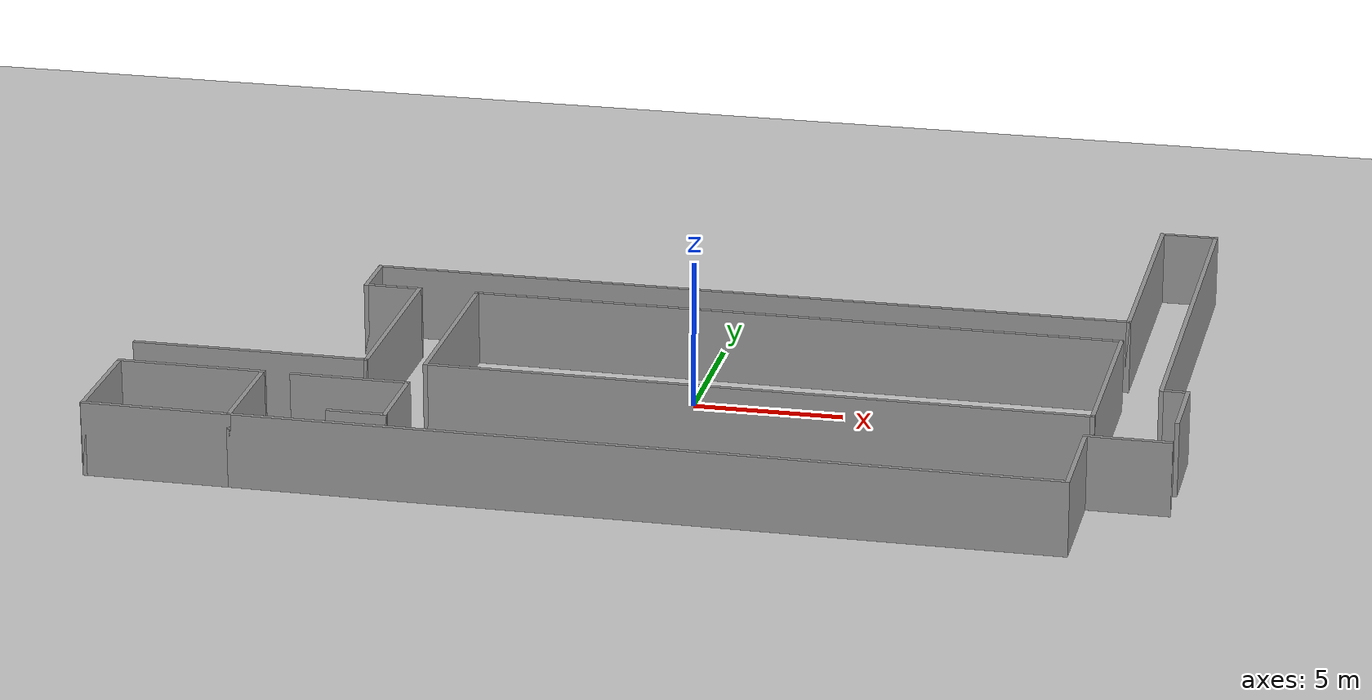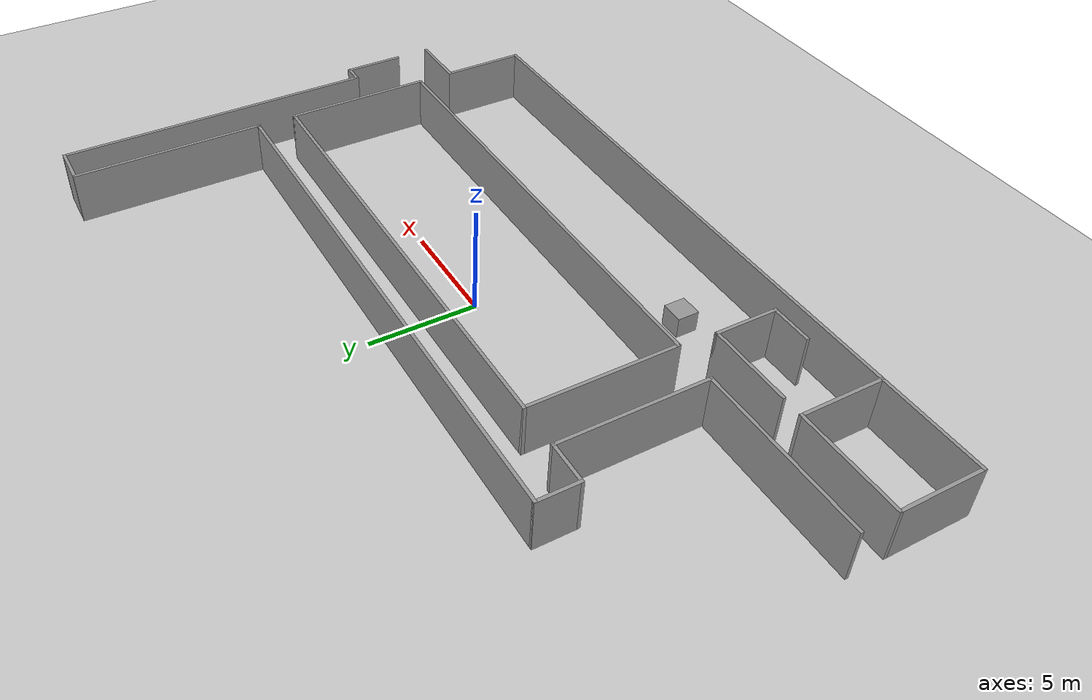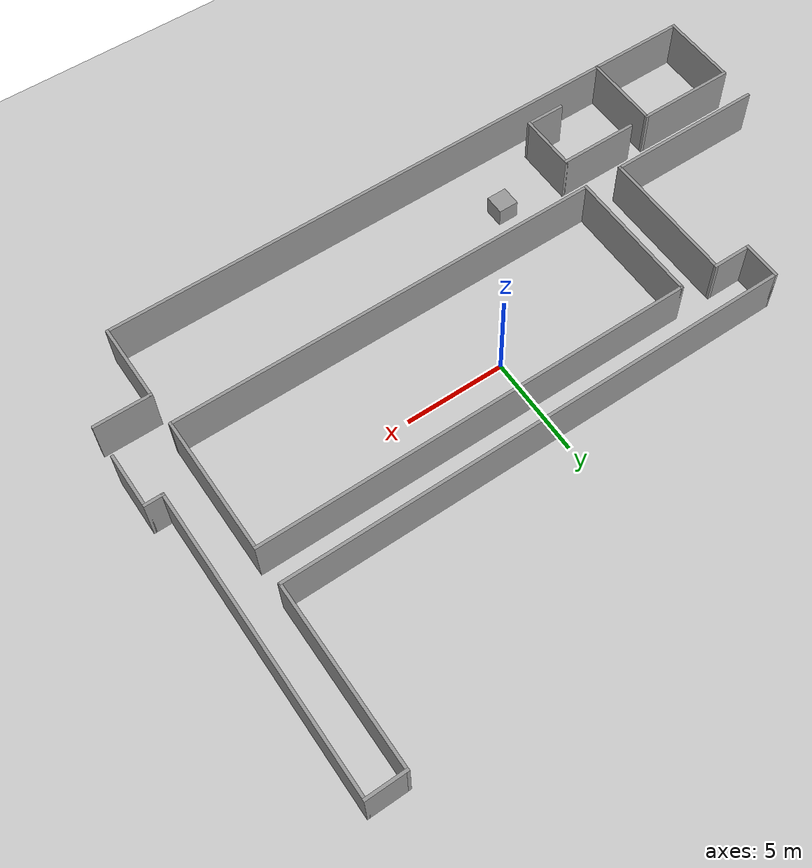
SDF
<sdf version="1.6">
 <world name="default">
  <light name="sun" type="directional">
   <pose>0 0 10 0 -0 0</pose>
   <diffuse>0.8 0.8 0.8 1</diffuse>
   <specular>0.2 0.2 0.2 1</specular>
   <attenuation>
    <range>1000</range>
    <constant>0.9</constant>
    <linear>0.01</linear>
    <quadratic>0.001</quadratic>
   </attenuation>
   <direction>-0.5 0.1 -0.9</direction>
  </light>
  <model name="ground_plane">
   <static>1</static>
   <link name="link">
    <collision name="collision">
     <geometry><plane><normal>0 0 1</normal><size>100 100</size></plane></geometry>
     <surface>
      <contact><collide_bitmask>65535</collide_bitmask></contact>
      <friction><ode><mu>100</mu><mu2>50</mu2></ode></friction>
     </surface>
    </collision>
    <visual name="visual">
     <cast_shadows>0</cast_shadows>
     <geometry><plane><normal>0 0 1</normal><size>100 100</size></plane></geometry>
     <material>
      <script><uri>file://media/materials/scripts/gazebo.material</uri><name>Gazebo/Grey</name></script>
     </material>
    </visual>
   </link>
  </model>
  <gravity>0 0 -9.8</gravity>
  <magnetic_field>6e-06 2.3e-05 -4.2e-05</magnetic_field>
  <atmosphere type="adiabatic"/>
  <physics name="default_physics" default="0" type="ode">
   <max_step_size>0.001</max_step_size>
   <real_time_factor>1</real_time_factor>
   <real_time_update_rate>1000</real_time_update_rate>
  </physics>
  <scene><ambient>0.4 0.4 0.4 1</ambient><background>0.7 0.7 0.7 1</background><shadows>1</shadows></scene>
  <spherical_coordinates>
   <surface_model>EARTH_WGS84</surface_model>
   <latitude_deg>0</latitude_deg>
   <longitude_deg>0</longitude_deg>
   <elevation>0</elevation>
   <heading_deg>0</heading_deg>
  </spherical_coordinates>
  <model name="FinalProj">
   <pose>-0.65 1.561 0 0 -0 0</pose>
   <link name="Wall_101">
    <collision name="Wall_101_Collision">
     <geometry><box><size>22 0.15 2.5</size></box></geometry>
     <pose>0 0 1.25 0 -0 0</pose>
    </collision>
    <visual name="Wall_101_Visual">
     <pose>0 0 1.25 0 -0 0</pose>
     <geometry><box><size>22 0.15 2.5</size></box></geometry>
     <material>
      <script><uri>file://media/materials/scripts/gazebo.material</uri><name>Gazebo/Grey</name></script>
      <ambient>1 1 1 1</ambient>
     </material>
     <meta><layer>0</layer></meta>
    </visual>
    <pose>3.575 0.861 0 0 -0 0</pose>
   </link>
   <link name="Wall_103">
    <collision name="Wall_103_Collision">
     <geometry><box><size>22 0.15 2.5</size></box></geometry>
     <pose>0 0 1.25 0 -0 0</pose>
    </collision>
    <visual name="Wall_103_Visual">
     <pose>0 0 1.25 0 -0 0</pose>
     <geometry><box><size>22 0.15 2.5</size></box></geometry>
     <material>
      <script><uri>file://media/materials/scripts/gazebo.material</uri><name>Gazebo/Grey</name></script>
      <ambient>1 1 1 1</ambient>
     </material>
     <meta><layer>0</layer></meta>
    </visual>
    <pose>3.575 -5.989 0 0 -0 0</pose>
   </link>
   <link name="Wall_105">
    <collision name="Wall_105_Collision">
     <geometry><box><size>7 0.15 2.5</size></box></geometry>
     <pose>0 0 1.25 0 -0 0</pose>
    </collision>
    <visual name="Wall_105_Visual">
     <pose>0 0 1.25 0 -0 0</pose>
     <geometry><box><size>7 0.15 2.5</size></box></geometry>
     <material>
      <script><uri>file://media/materials/scripts/gazebo.material</uri><name>Gazebo/Grey</name></script>
      <ambient>1 1 1 1</ambient>
     </material>
     <meta><layer>0</layer></meta>
    </visual>
    <pose>14.5 -2.564 0 0 0 -1.5708</pose>
   </link>
   <link name="Wall_107">
    <collision name="Wall_107_Collision">
     <geometry><box><size>4.02669 0.15 2.5</size></box></geometry>
     <pose>0 0 1.25 0 -0 0</pose>
    </collision>
    <visual name="Wall_107_Visual">
     <pose>0 0 1.25 0 -0 0</pose>
     <geometry><box><size>4.02669 0.15 2.5</size></box></geometry>
     <material>
      <script><uri>file://media/materials/scripts/gazebo.material</uri><name>Gazebo/Grey</name></script>
      <ambient>1 1 1 1</ambient>
     </material>
     <meta><layer>0</layer></meta>
    </visual>
    <pose>14.5 -9.6225 0 0 -0 1.5708</pose>
   </link>
   <link name="Wall_109">
    <collision name="Wall_109_Collision">
     <geometry><box><size>4 0.15 2.5</size></box></geometry>
     <pose>0 0 1.25 0 -0 0</pose>
    </collision>
    <visual name="Wall_109_Visual">
     <pose>0 0 1.25 0 -0 0</pose>
     <geometry><box><size>4 0.15 2.5</size></box></geometry>
     <material>
      <script><uri>file://media/materials/scripts/gazebo.material</uri><name>Gazebo/Grey</name></script>
      <ambient>1 1 1 1</ambient>
     </material>
     <meta><layer>0</layer></meta>
    </visual>
    <pose>-17.2 -9.636 0 0 0 -1.5708</pose>
   </link>
   <link name="Wall_111">
    <collision name="Wall_111_Collision">
     <geometry><box><size>5 0.15 2.5</size></box></geometry>
     <pose>0 0 1.25 0 -0 0</pose>
    </collision>
    <visual name="Wall_111_Visual">
     <pose>0 0 1.25 0 -0 0</pose>
     <geometry><box><size>5 0.15 2.5</size></box></geometry>
     <material>
      <script><uri>file://media/materials/scripts/gazebo.material</uri><name>Gazebo/Grey</name></script>
      <ambient>1 1 1 1</ambient>
     </material>
     <meta><layer>0</layer></meta>
    </visual>
    <pose>-14.775 -11.561 0 0 -0 0</pose>
   </link>
   <link name="Wall_113">
    <collision name="Wall_113_Collision">
     <geometry><box><size>2.85 0.15 2.5</size></box></geometry>
     <pose>0 0 1.25 0 -0 0</pose>
    </collision>
    <visual name="Wall_113_Visual">
     <pose>0 0 1.25 0 -0 0</pose>
     <geometry><box><size>2.85 0.15 2.5</size></box></geometry>
     <material>
      <script><uri>file://media/materials/scripts/gazebo.material</uri><name>Gazebo/Grey</name></script>
      <ambient>1 1 1 1</ambient>
     </material>
     <meta><layer>0</layer></meta>
    </visual>
    <pose>15.85 -7.684 0 0 -0 0</pose>
   </link>
   <link name="Wall_116">
    <collision name="Wall_116_Collision">
     <geometry><box><size>9 0.15 2.5</size></box></geometry>
     <pose>0 0 1.25 0 -0 0</pose>
    </collision>
    <visual name="Wall_116_Visual">
     <pose>0 0 1.25 0 -0 0</pose>
     <geometry><box><size>9 0.15 2.5</size></box></geometry>
     <material>
      <script><uri>file://media/materials/scripts/gazebo.material</uri><name>Gazebo/Grey</name></script>
      <ambient>1 1 1 1</ambient>
     </material>
     <meta><layer>0</layer></meta>
    </visual>
    <pose>14.5 7.136 0 0 -0 1.5708</pose>
   </link>
   <link name="Wall_119">
    <collision name="Wall_119_Collision">
     <geometry><box><size>2 0.15 2.5</size></box></geometry>
     <pose>0 0 1.25 0 -0 0</pose>
    </collision>
    <visual name="Wall_119_Visual">
     <pose>0 0 1.25 0 -0 0</pose>
     <geometry><box><size>2 0.15 2.5</size></box></geometry>
     <material>
      <script><uri>file://media/materials/scripts/gazebo.material</uri><name>Gazebo/Grey</name></script>
      <ambient>1 1 1 1</ambient>
     </material>
     <meta><layer>0</layer></meta>
    </visual>
    <pose>15.425 11.561 0 0 -0 0</pose>
   </link>
   <link name="Wall_121">
    <collision name="Wall_121_Collision">
     <geometry><box><size>15 0.15 2.5</size></box></geometry>
     <pose>0 0 1.25 0 -0 0</pose>
    </collision>
    <visual name="Wall_121_Visual">
     <pose>0 0 1.25 0 -0 0</pose>
     <geometry><box><size>15 0.15 2.5</size></box></geometry>
     <material>
      <script><uri>file://media/materials/scripts/gazebo.material</uri><name>Gazebo/Grey</name></script>
      <ambient>1 1 1 1</ambient>
     </material>
     <meta><layer>0</layer></meta>
    </visual>
    <pose>16.35 4.136 0 0 0 -1.5708</pose>
   </link>
   <link name="Wall_123">
    <collision name="Wall_123_Collision">
     <geometry><box><size>1 0.15 2.5</size></box></geometry>
     <pose>0 0 1.25 0 -0 0</pose>
    </collision>
    <visual name="Wall_123_Visual">
     <pose>0 0 1.25 0 -0 0</pose>
     <geometry><box><size>1 0.15 2.5</size></box></geometry>
     <material>
      <script><uri>file://media/materials/scripts/gazebo.material</uri><name>Gazebo/Grey</name></script>
      <ambient>1 1 1 1</ambient>
     </material>
     <meta><layer>0</layer></meta>
    </visual>
    <pose>16.775 -3.289 0 0 -0 0</pose>
   </link>
   <link name="Wall_125">
    <collision name="Wall_125_Collision">
     <geometry><box><size>2.85 0.15 2.5</size></box></geometry>
     <pose>0 0 1.25 0 -0 0</pose>
    </collision>
    <visual name="Wall_125_Visual">
     <pose>0 0 1.25 0 -0 0</pose>
     <geometry><box><size>2.85 0.15 2.5</size></box></geometry>
     <material>
      <script><uri>file://media/materials/scripts/gazebo.material</uri><name>Gazebo/Grey</name></script>
      <ambient>1 1 1 1</ambient>
     </material>
     <meta><layer>0</layer></meta>
    </visual>
    <pose>17.2 -4.639 0 0 0 -1.5708</pose>
   </link>
   <link name="Wall_79">
    <collision name="Wall_79_Collision">
     <geometry><box><size>27 0.15 2.5</size></box></geometry>
     <pose>0 0 1.25 0 -0 0</pose>
    </collision>
    <visual name="Wall_79_Visual">
     <pose>0 0 1.25 0 -0 0</pose>
     <geometry><box><size>27 0.15 2.5</size></box></geometry>
     <material>
      <script><uri>file://media/materials/scripts/gazebo.material</uri><name>Gazebo/Grey</name></script>
      <ambient>1 1 1 1</ambient>
     </material>
     <meta><layer>0</layer></meta>
    </visual>
    <pose>1.075 -11.561 0 0 -0 0</pose>
   </link>
   <link name="Wall_81">
    <collision name="Wall_81_Collision">
     <geometry><box><size>4 0.15 2.5</size></box></geometry>
     <pose>0 0 1.25 0 -0 0</pose>
    </collision>
    <visual name="Wall_81_Visual">
     <pose>0 0 1.25 0 -0 0</pose>
     <geometry><box><size>4 0.15 2.5</size></box></geometry>
     <material>
      <script><uri>file://media/materials/scripts/gazebo.material</uri><name>Gazebo/Grey</name></script>
      <ambient>1 1 1 1</ambient>
     </material>
     <meta><layer>0</layer></meta>
    </visual>
    <pose>-12.35 -9.636 0 0 -0 1.5708</pose>
   </link>
   <link name="Wall_83">
    <collision name="Wall_83_Collision">
     <geometry><box><size>5 0.15 2.5</size></box></geometry>
     <pose>0 0 1.25 0 -0 0</pose>
    </collision>
    <visual name="Wall_83_Visual">
     <pose>0 0 1.25 0 -0 0</pose>
     <geometry><box><size>5 0.15 2.5</size></box></geometry>
     <material>
      <script><uri>file://media/materials/scripts/gazebo.material</uri><name>Gazebo/Grey</name></script>
      <ambient>1 1 1 1</ambient>
     </material>
     <meta><layer>0</layer></meta>
    </visual>
    <pose>-14.775 -7.711 0 0 -0 3.14159</pose>
   </link>
   <link name="Wall_85">
    <collision name="Wall_85_Collision">
     <geometry><box><size>8 0.15 2.5</size></box></geometry>
     <pose>0 0 1.25 0 -0 0</pose>
    </collision>
    <visual name="Wall_85_Visual">
     <pose>0 0 1.25 0 -0 0</pose>
     <geometry><box><size>8 0.15 2.5</size></box></geometry>
     <material>
      <script><uri>file://media/materials/scripts/gazebo.material</uri><name>Gazebo/Grey</name></script>
      <ambient>1 1 1 1</ambient>
     </material>
     <meta><layer>0</layer></meta>
    </visual>
    <pose>-13.275 -5.989 0 0 -0 0</pose>
   </link>
   <link name="Wall_87">
    <collision name="Wall_87_Collision">
     <geometry><box><size>4 0.15 2.5</size></box></geometry>
     <pose>0 0 1.25 0 -0 0</pose>
    </collision>
    <visual name="Wall_87_Visual">
     <pose>0 0 1.25 0 -0 0</pose>
     <geometry><box><size>4 0.15 2.5</size></box></geometry>
     <material>
      <script><uri>file://media/materials/scripts/gazebo.material</uri><name>Gazebo/Grey</name></script>
      <ambient>1 1 1 1</ambient>
     </material>
     <meta><layer>0</layer></meta>
    </visual>
    <pose>-9.425 -7.711 0 0 -0 0</pose>
   </link>
   <link name="Wall_91">
    <collision name="Wall_91_Collision">
     <geometry><box><size>3 0.15 2.5</size></box></geometry>
     <pose>0 0 1.25 0 -0 0</pose>
    </collision>
    <visual name="Wall_91_Visual">
     <pose>0 0 1.25 0 -0 0</pose>
     <geometry><box><size>3 0.15 2.5</size></box></geometry>
     <material>
      <script><uri>file://media/materials/scripts/gazebo.material</uri><name>Gazebo/Grey</name></script>
      <ambient>1 1 1 1</ambient>
     </material>
     <meta><layer>0</layer></meta>
    </visual>
    <pose>-7.5 -9.136 0 0 0 -1.5708</pose>
   </link>
   <link name="Wall_92">
    <collision name="Wall_92_Collision">
     <geometry><box><size>2 0.15 2.5</size></box></geometry>
     <pose>0 0 1.25 0 -0 0</pose>
    </collision>
    <visual name="Wall_92_Visual">
     <pose>0 0 1.25 0 -0 0</pose>
     <geometry><box><size>2 0.15 2.5</size></box></geometry>
     <material>
      <script><uri>file://media/materials/scripts/gazebo.material</uri><name>Gazebo/Grey</name></script>
      <ambient>1 1 1 1</ambient>
     </material>
     <meta><layer>0</layer></meta>
    </visual>
    <pose>-8.425 -10.561 0 0 -0 3.14159</pose>
   </link>
   <link name="Wall_94">
    <collision name="Wall_94_Collision">
     <geometry><box><size>7 0.15 2.5</size></box></geometry>
     <pose>0 0 1.25 0 -0 0</pose>
    </collision>
    <visual name="Wall_94_Visual">
     <pose>0 0 1.25 0 -0 0</pose>
     <geometry><box><size>7 0.15 2.5</size></box></geometry>
     <material>
      <script><uri>file://media/materials/scripts/gazebo.material</uri><name>Gazebo/Grey</name></script>
      <ambient>1 1 1 1</ambient>
     </material>
     <meta><layer>0</layer></meta>
    </visual>
    <pose>-9.35 -2.564 0 0 -0 1.5708</pose>
   </link>
   <link name="Wall_95">
    <collision name="Wall_95_Collision">
     <geometry><box><size>2 0.15 2.5</size></box></geometry>
     <pose>0 0 1.25 0 -0 0</pose>
    </collision>
    <visual name="Wall_95_Visual">
     <pose>0 0 1.25 0 -0 0</pose>
     <geometry><box><size>2 0.15 2.5</size></box></geometry>
     <material>
      <script><uri>file://media/materials/scripts/gazebo.material</uri><name>Gazebo/Grey</name></script>
      <ambient>1 1 1 1</ambient>
     </material>
     <meta><layer>0</layer></meta>
    </visual>
    <pose>-10.275 0.861 0 0 -0 3.14159</pose>
   </link>
   <link name="Wall_96">
    <collision name="Wall_96_Collision">
     <geometry><box><size>2 0.15 2.5</size></box></geometry>
     <pose>0 0 1.25 0 -0 0</pose>
    </collision>
    <visual name="Wall_96_Visual">
     <pose>0 0 1.25 0 -0 0</pose>
     <geometry><box><size>2 0.15 2.5</size></box></geometry>
     <material>
      <script><uri>file://media/materials/scripts/gazebo.material</uri><name>Gazebo/Grey</name></script>
      <ambient>1 1 1 1</ambient>
     </material>
     <meta><layer>0</layer></meta>
    </visual>
    <pose>-11.2 1.786 0 0 -0 1.5708</pose>
   </link>
   <link name="Wall_97">
    <collision name="Wall_97_Collision">
     <geometry><box><size>25.85 0.15 2.5</size></box></geometry>
     <pose>0 0 1.25 0 -0 0</pose>
    </collision>
    <visual name="Wall_97_Visual">
     <pose>0 0 1.25 0 -0 0</pose>
     <geometry><box><size>25.85 0.15 2.5</size></box></geometry>
     <material>
      <script><uri>file://media/materials/scripts/gazebo.material</uri><name>Gazebo/Grey</name></script>
      <ambient>1 1 1 1</ambient>
     </material>
     <meta><layer>0</layer></meta>
    </visual>
    <pose>1.65 2.711 0 0 -0 0</pose>
   </link>
   <link name="Wall_99">
    <collision name="Wall_99_Collision">
     <geometry><box><size>7 0.15 2.5</size></box></geometry>
     <pose>0 0 1.25 0 -0 0</pose>
    </collision>
    <visual name="Wall_99_Visual">
     <pose>0 0 1.25 0 -0 0</pose>
     <geometry><box><size>7 0.15 2.5</size></box></geometry>
     <material>
      <script><uri>file://media/materials/scripts/gazebo.material</uri><name>Gazebo/Grey</name></script>
      <ambient>1 1 1 1</ambient>
     </material>
     <meta><layer>0</layer></meta>
    </visual>
    <pose>-7.35 -2.564 0 0 0 -1.5708</pose>
   </link>
   <static>1</static>
  </model>
  <model name="unit_box">
   <pose>-5.10622 -6.92114 0.5 0 -0 0</pose>
   <link name="link">
    <inertial>
     <mass>1</mass>
     <inertia>
      <ixx>0.166667</ixx>
      <ixy>0</ixy>
      <ixz>0</ixz>
      <iyy>0.166667</iyy>
      <iyz>0</iyz>
      <izz>0.166667</izz>
     </inertia>
    </inertial>
    <collision name="collision"><geometry><box><size>1 1 1</size></box></geometry></collision>
    <visual name="visual">
     <geometry><box><size>1 1 1</size></box></geometry>
     <material>
      <script><name>Gazebo/Grey</name><uri>file://media/materials/scripts/gazebo.material</uri></script>
     </material>
    </visual>
   </link>
  </model>
 </world>
</sdf>
